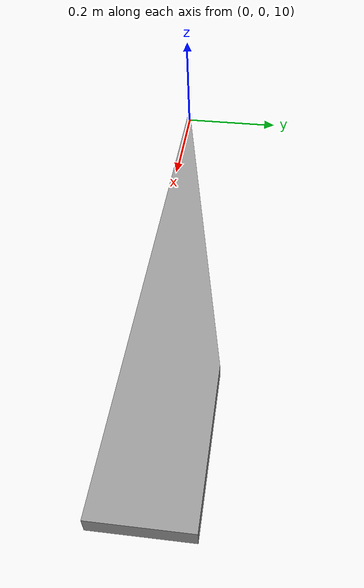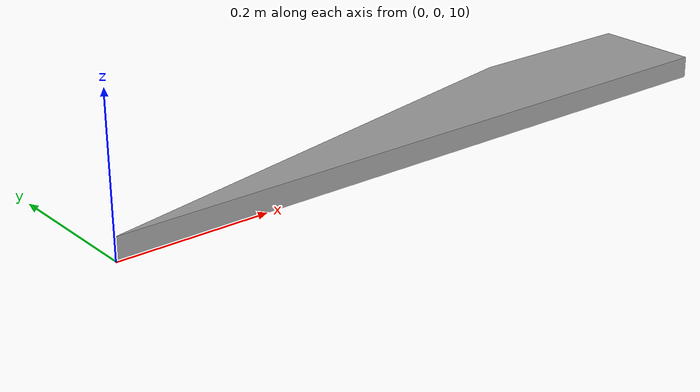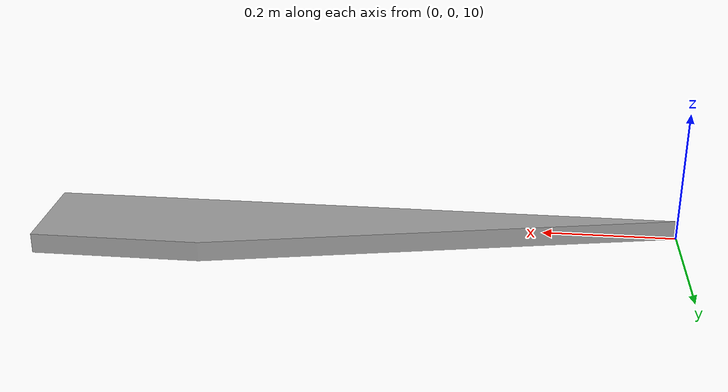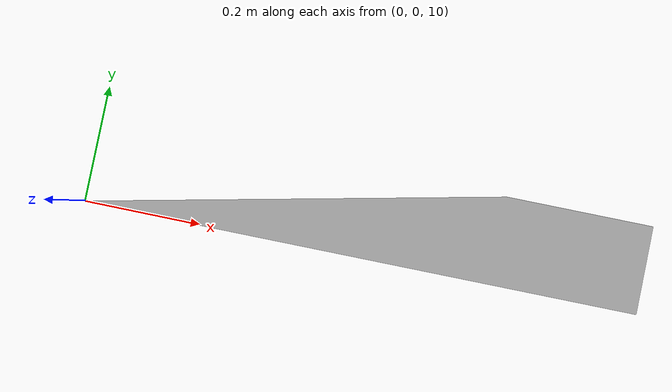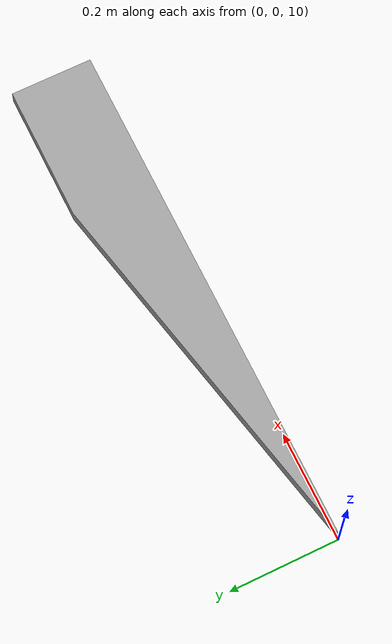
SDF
<?xml version="1.0" ?>
<sdf version="1.5">
	<world name="default">
		<!-- A global light source -->
		<include>
			<uri>model://sun</uri>
		</include>
		<!-- A ground plane -->
		<include>
			<uri>model://ground_plane</uri>
		</include>
		<include>
      		<uri>model://accelerateur</uri>
      		<pose>0 0 10 0 0 0</pose>
    	</include>
	</world>
</sdf>

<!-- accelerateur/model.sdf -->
<sdf version="1.5">
    <model name="accelerateur">
        <static>false</static>
        <link name="link">
            <collision name="collision">
                <geometry>
                    <mesh>
                        <uri>model://accelerateur/meshes/A1.STL</uri>
                        <scale>0.001 0.001 0.001</scale>
                    </mesh>
                </geometry>
                <surface>
                    <friction>
                        <ode>
                            <mu>100</mu>
                            <mu2>50</mu2>
                        </ode>
                    </friction>
                </surface>
            </collision>
            <visual name="visual">
                <geometry>
                    <mesh>
                        <uri>model://accelerateur/meshes/A1.STL</uri>
                        <scale>0.001 0.001 0.001</scale>
                    </mesh>
                </geometry>
                <material>
                    <script>
                        <uri>file://media/materials/scripts/gazebo.material</uri>
                        <name>Gazebo/Grey</name>
                    </script>
                </material>
            </visual>
        </link>
    </model>
</sdf>
